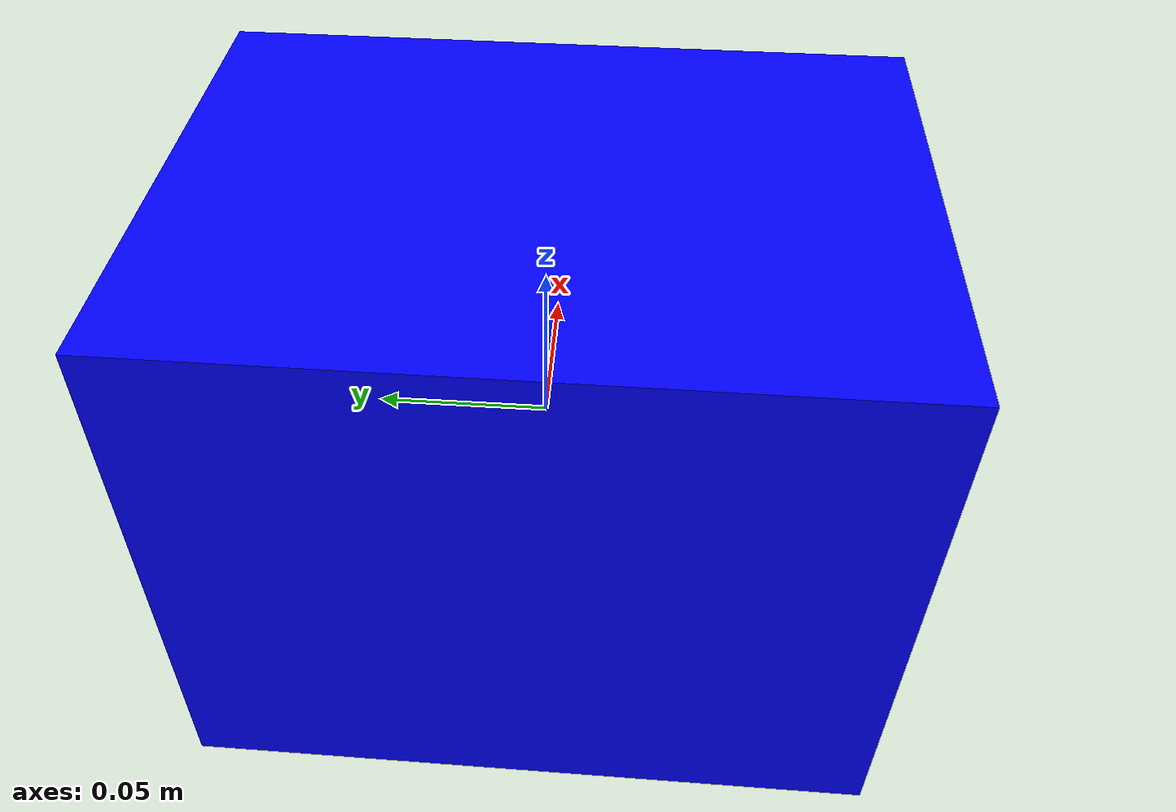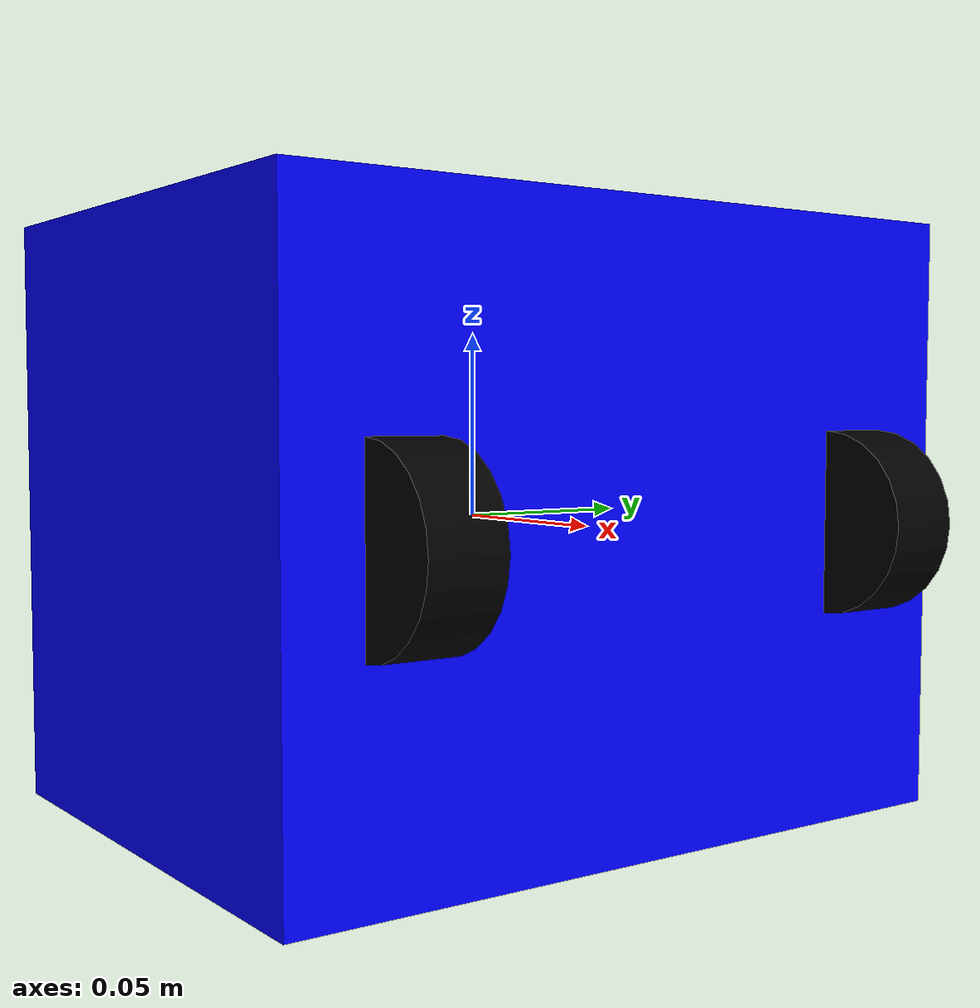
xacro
<?xml version="1.0"?>
<robot name="tb6612_robot" xmlns:xacro="http://ros.org/wiki/xacro">

  <!-- Robot Base Properties -->
  <xacro:property name="base_width" value="0.2"/>
  <xacro:property name="base_length" value="0.15"/>
  <xacro:property name="base_height" value="0.16"/>

  <!-- Wheel Properties -->
  <xacro:property name="wheel_radius" value="0.0236"/>
  <xacro:property name="wheel_width" value="0.02"/>
  <xacro:property name="wheel_base" value="0.14"/>

  <!-- Colors -->
  <material name="black">
    <color rgba="0.0 0.0 0.0 1.0"/>
  </material>

  <material name="blue">
    <color rgba="0.0 0.0 1.0 1.0"/>
  </material>

  <material name="green">
    <color rgba="0.0 1.0 0.0 1.0"/>
  </material>

  <material name="red">
    <color rgba="1.0 0.0 0.0 1.0"/>
  </material>

  <!-- base_footprint link (ground projection) -->
  <link name="base_footprint"/>

  <!-- base_link (robot center) -->
  <link name="base_link">
    <visual>
      <origin xyz="0 0 0" rpy="0 0 0"/>
      <geometry>
        <box size="${base_length} ${base_width} ${base_height}"/>
      </geometry>
      <material name="blue"/>
    </visual>
    <collision>
      <origin xyz="0 0 0" rpy="0 0 0"/>
      <geometry>
        <box size="${base_length} ${base_width} ${base_height}"/>
      </geometry>
    </collision>
    <inertial>
      <mass value="1.0"/>
      <inertia ixx="0.01" ixy="0.0" ixz="0.0" iyy="0.01" iyz="0.0" izz="0.01"/>
    </inertial>
  </link>

  <!-- base_footprint to base_link joint -->
  <joint name="base_footprint_joint" type="fixed">
    <parent link="base_footprint"/>
    <child link="base_link"/>
    <origin xyz="0 0 0" rpy="0 0 0"/>
  </joint>

  <!-- Left Wheel -->
  <link name="left_wheel">
    <visual>
      <origin xyz="0 0 0" rpy="1.5708 0 0"/>
      <geometry>
        <cylinder length="${wheel_width}" radius="${wheel_radius}"/>
      </geometry>
      <material name="black"/>
    </visual>
    <collision>
      <origin xyz="0 0 0" rpy="1.5708 0 0"/>
      <geometry>
        <cylinder length="${wheel_width}" radius="${wheel_radius}"/>
      </geometry>
    </collision>
    <inertial>
      <mass value="0.1"/>
      <inertia ixx="0.001" ixy="0.0" ixz="0.0" iyy="0.001" iyz="0.0" izz="0.001"/>
    </inertial>
  </link>

  <joint name="left_wheel_joint" type="continuous">
    <parent link="base_link"/>
    <child link="left_wheel"/>
    <origin xyz="0 ${wheel_base/2} 0.0236" rpy="0 0 0"/>
    <axis xyz="0 1 0"/>
  </joint>

  <!-- Right Wheel -->
  <link name="right_wheel">
    <visual>
      <origin xyz="0 0 0" rpy="1.5708 0 0"/>
      <geometry>
        <cylinder length="${wheel_width}" radius="${wheel_radius}"/>
      </geometry>
      <material name="black"/>
    </visual>
    <collision>
      <origin xyz="0 0 0" rpy="1.5708 0 0"/>
      <geometry>
        <cylinder length="${wheel_width}" radius="${wheel_radius}"/>
      </geometry>
    </collision>
    <inertial>
      <mass value="0.1"/>
      <inertia ixx="0.001" ixy="0.0" ixz="0.0" iyy="0.001" iyz="0.0" izz="0.001"/>
    </inertial>
  </link>

  <joint name="right_wheel_joint" type="continuous">
    <parent link="base_link"/>
    <child link="right_wheel"/>
    <origin xyz="0 -${wheel_base/2} 0.0236" rpy="0 0 0"/>
    <axis xyz="0 1 0"/>
  </joint>

<!-- Left Omni Wheel -->
<link name="left_omni_wheel">
  <visual>
    <origin xyz="0 0 0" rpy="1.5708 0 0"/>
    <geometry>
      <cylinder length="${wheel_width}" radius="0.024"/>
    </geometry>
    <material name="black"/>
  </visual>
  <collision>
    <origin xyz="0 0 0" rpy="1.5708 0 0"/>
    <geometry>
      <cylinder length="${wheel_width}" radius="0.024"/>
    </geometry>
  </collision>
  <inertial>
    <mass value="0.05"/>
    <inertia ixx="0.0001" ixy="0.0" ixz="0.0" iyy="0.0001" iyz="0.0" izz="0.0001"/>
  </inertial>
</link>

<joint name="left_omni_wheel_joint" type="fixed">
  <parent link="base_link"/>
  <child link="left_omni_wheel"/>
  <origin xyz="0.075 ${wheel_base/2} 0" rpy="0 0 0"/>
</joint>

<!-- Right Omni Wheel -->
<link name="right_omni_wheel">
  <visual>
    <origin xyz="0 0 0" rpy="1.5708 0 0"/>
    <geometry>
      <cylinder length="${wheel_width}" radius="0.024"/>
    </geometry>
    <material name="black"/>
  </visual>
  <collision>
    <origin xyz="0 0 0" rpy="1.5708 0 0"/>
    <geometry>
      <cylinder length="${wheel_width}" radius="0.024"/>
    </geometry>
  </collision>
  <inertial>
    <mass value="0.05"/>
    <inertia ixx="0.0001" ixy="0.0" ixz="0.0" iyy="0.0001" iyz="0.0" izz="0.0001"/>
  </inertial>
</link>

<joint name="right_omni_wheel_joint" type="fixed">
  <parent link="base_link"/>
  <child link="right_omni_wheel"/>
  <origin xyz="0.075 -${wheel_base/2} 0" rpy="0 0 0"/>
</joint>

  <!-- LiDAR Frame -->

  <!-- IMU Frame -->
  <link name="imu_link"/>

  <joint name="imu_joint" type="fixed">
    <parent link="base_link"/>
    <child link="imu_link"/>
    <origin xyz="0 0 0.02" rpy="0 0 0"/>
  </joint>

</robot>
